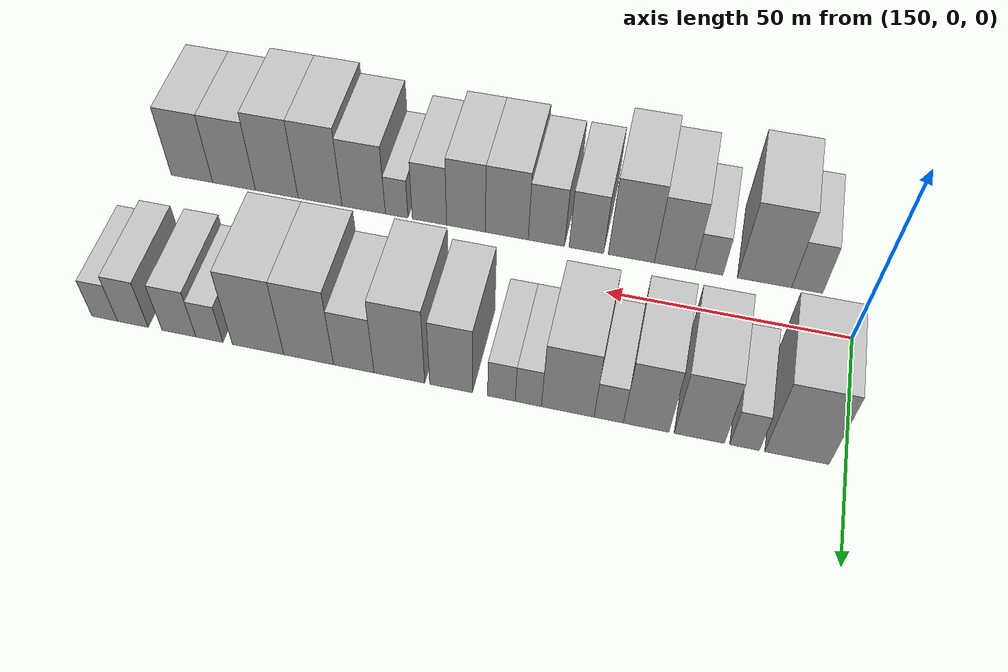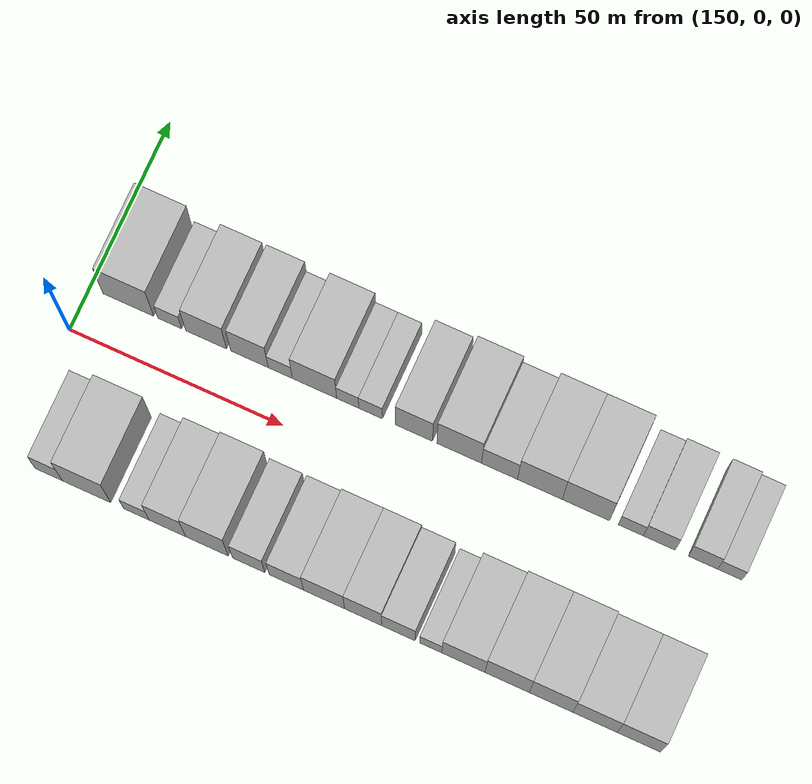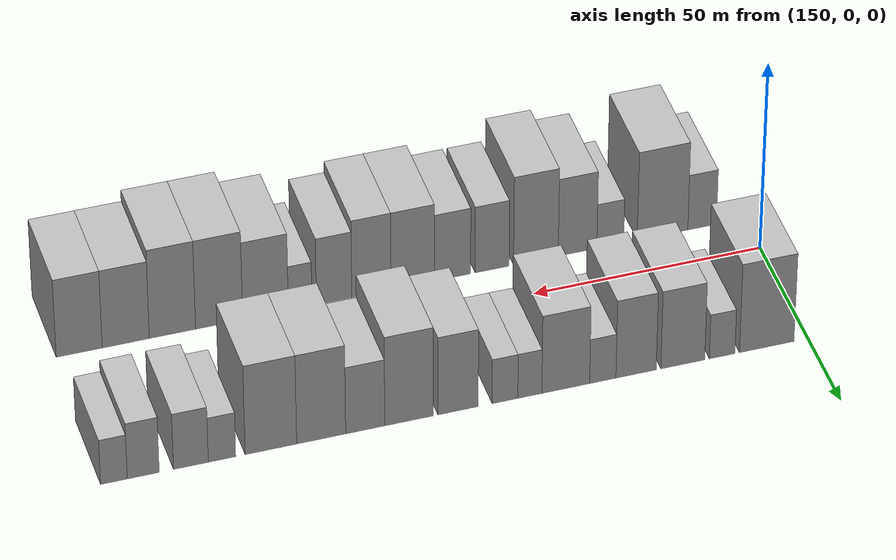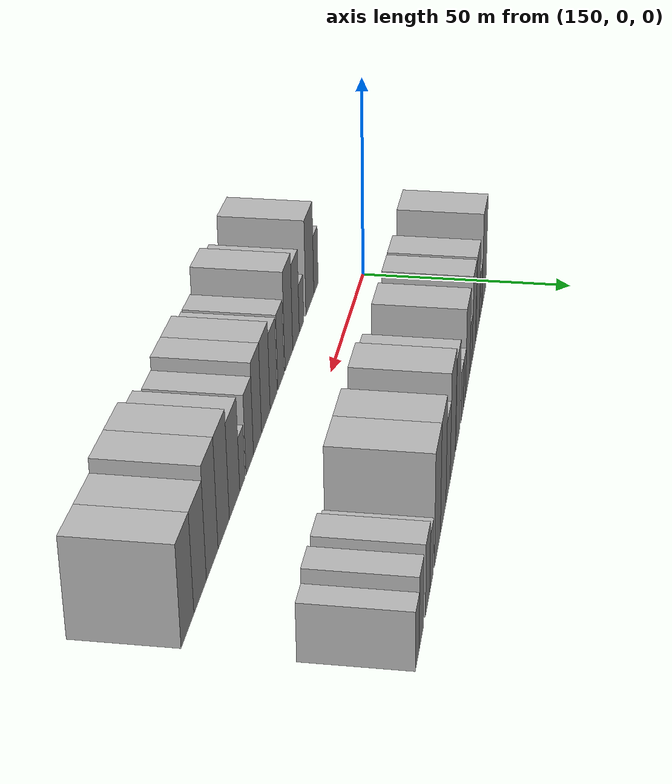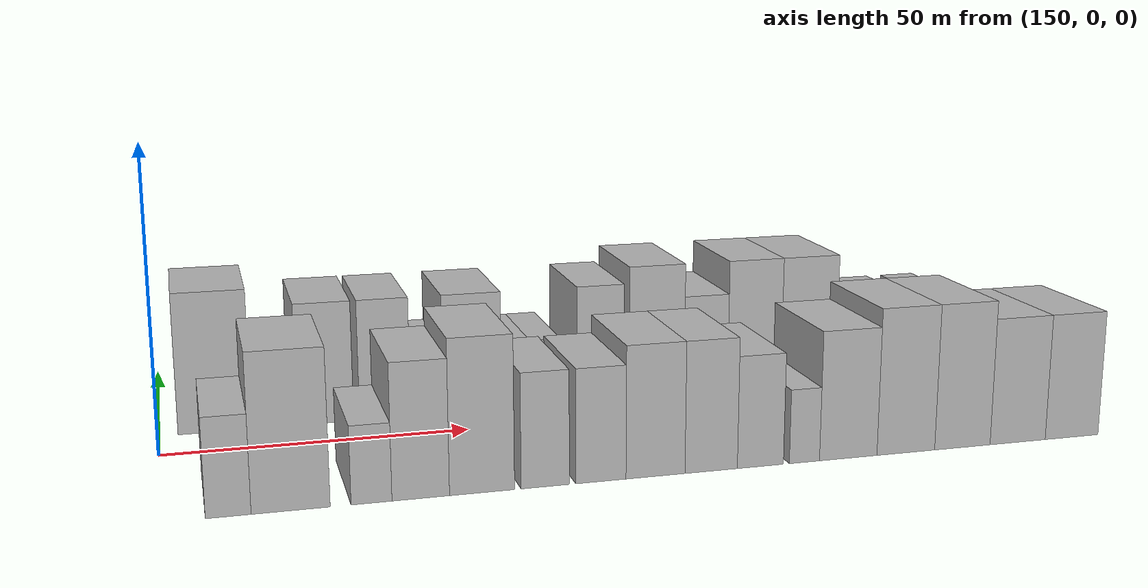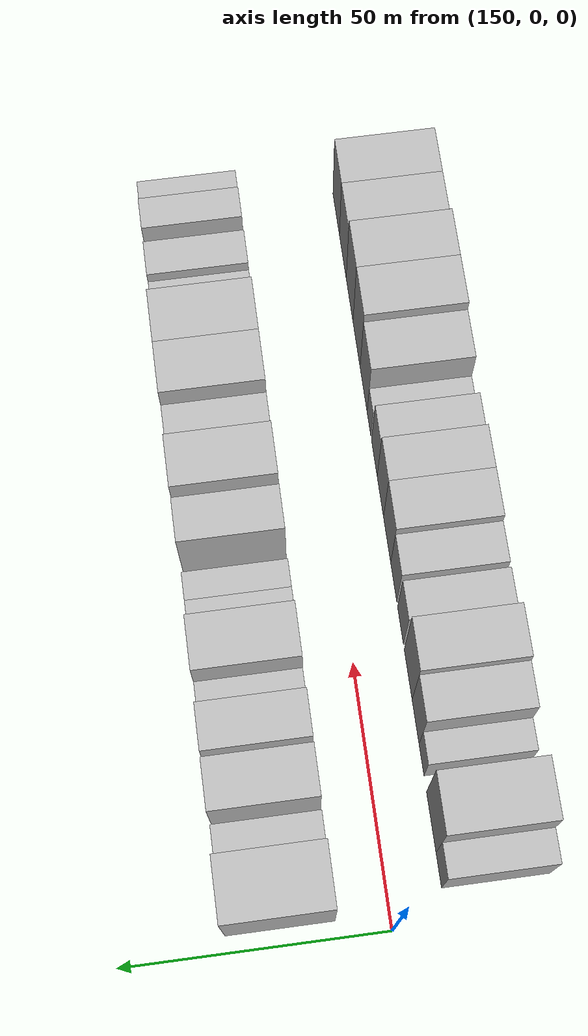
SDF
<sdf version="1.6">
 <world name="default">
  <model name="building_16">
   <static>1</static>
   <pose>159.0766 20.0000 0 0.000000 0.000000 1.570796</pose>
   <link name="link">
    <pose>0 0 12.00 0 0 0</pose>
    <collision name="collision"><geometry><box><size>20.0000 11.9148 24.0000</size></box></geometry></collision>
    <visual name="visual">
     <cast_shadows>0</cast_shadows>
     <geometry><box><size>20.0000 11.9148 24.0000</size></box></geometry>
     <material>
      <script>
       <uri>model://HANNAS_wall/materials/scripts</uri>
       <uri>model://HANNAS_wall/materials/textures</uri>
       <name>vrc/HANNAS_wall</name>
      </script>
     </material>
    </visual>
   </link>
  </model>
  <model name="building_17">
   <static>1</static>
   <pose>168.8202 20.0000 0 0.000000 0.000000 1.570796</pose>
   <link name="link">
    <pose>0 0 6.00 0 0 0</pose>
    <collision name="collision"><geometry><box><size>20.0000 5.5725 12.0000</size></box></geometry></collision>
    <visual name="visual">
     <cast_shadows>0</cast_shadows>
     <geometry><box><size>20.0000 5.5725 12.0000</size></box></geometry>
     <material>
      <script>
       <uri>model://HANNAS_wall/materials/scripts</uri>
       <uri>model://HANNAS_wall/materials/textures</uri>
       <name>vrc/HANNAS_wall</name>
      </script>
     </material>
    </visual>
   </link>
  </model>
  <model name="building_18">
   <static>1</static>
   <pose>177.3707 20.0000 0 0.000000 0.000000 1.570796</pose>
   <link name="link">
    <pose>0 0 10.50 0 0 0</pose>
    <collision name="collision"><geometry><box><size>20.0000 9.5284 21.0000</size></box></geometry></collision>
    <visual name="visual">
     <cast_shadows>0</cast_shadows>
     <geometry><box><size>20.0000 9.5284 21.0000</size></box></geometry>
     <material>
      <script>
       <uri>model://HANNAS_wall/materials/scripts</uri>
       <uri>model://HANNAS_wall/materials/textures</uri>
       <name>vrc/HANNAS_wall</name>
      </script>
     </material>
    </visual>
   </link>
  </model>
  <model name="building_19">
   <static>1</static>
   <pose>187.5096 20.0000 0 0.000000 0.000000 1.570796</pose>
   <link name="link">
    <pose>0 0 10.50 0 0 0</pose>
    <collision name="collision"><geometry><box><size>20.0000 8.7494 21.0000</size></box></geometry></collision>
    <visual name="visual">
     <cast_shadows>0</cast_shadows>
     <geometry><box><size>20.0000 8.7494 21.0000</size></box></geometry>
     <material>
      <script>
       <uri>model://HANNAS_wall/materials/scripts</uri>
       <uri>model://HANNAS_wall/materials/textures</uri>
       <name>vrc/HANNAS_wall</name>
      </script>
     </material>
    </visual>
   </link>
  </model>
  <model name="building_20">
   <static>1</static>
   <pose>194.7217 20.0000 0 0.000000 0.000000 1.570796</pose>
   <link name="link">
    <pose>0 0 6.00 0 0 0</pose>
    <collision name="collision"><geometry><box><size>20.0000 5.6749 12.0000</size></box></geometry></collision>
    <visual name="visual">
     <cast_shadows>0</cast_shadows>
     <geometry><box><size>20.0000 5.6749 12.0000</size></box></geometry>
     <material>
      <script>
       <uri>model://HANNAS_wall/materials/scripts</uri>
       <uri>model://HANNAS_wall/materials/textures</uri>
       <name>vrc/HANNAS_wall</name>
      </script>
     </material>
    </visual>
   </link>
  </model>
  <model name="building_21">
   <static>1</static>
   <pose>202.7160 20.0000 0 0.000000 0.000000 1.570796</pose>
   <link name="link">
    <pose>0 0 10.50 0 0 0</pose>
    <collision name="collision"><geometry><box><size>20.0000 10.3136 21.0000</size></box></geometry></collision>
    <visual name="visual">
     <cast_shadows>0</cast_shadows>
     <geometry><box><size>20.0000 10.3136 21.0000</size></box></geometry>
     <material>
      <script>
       <uri>model://HANNAS_wall/materials/scripts</uri>
       <uri>model://HANNAS_wall/materials/textures</uri>
       <name>vrc/HANNAS_wall</name>
      </script>
     </material>
    </visual>
   </link>
  </model>
  <model name="building_22">
   <static>1</static>
   <pose>210.4509 20.0000 0 0.000000 0.000000 1.570796</pose>
   <link name="link">
    <pose>0 0 6.00 0 0 0</pose>
    <collision name="collision"><geometry><box><size>20.0000 5.1561 12.0000</size></box></geometry></collision>
    <visual name="visual">
     <cast_shadows>0</cast_shadows>
     <geometry><box><size>20.0000 5.1561 12.0000</size></box></geometry>
     <material>
      <script>
       <uri>model://HANNAS_wall/materials/scripts</uri>
       <uri>model://HANNAS_wall/materials/textures</uri>
       <name>vrc/HANNAS_wall</name>
      </script>
     </material>
    </visual>
   </link>
  </model>
  <model name="building_23">
   <static>1</static>
   <pose>215.7773 20.0000 0 0.000000 0.000000 1.570796</pose>
   <link name="link">
    <pose>0 0 6.00 0 0 0</pose>
    <collision name="collision"><geometry><box><size>20.0000 5.4966 12.0000</size></box></geometry></collision>
    <visual name="visual">
     <cast_shadows>0</cast_shadows>
     <geometry><box><size>20.0000 5.4966 12.0000</size></box></geometry>
     <material>
      <script>
       <uri>model://HANNAS_wall/materials/scripts</uri>
       <uri>model://HANNAS_wall/materials/textures</uri>
       <name>vrc/HANNAS_wall</name>
      </script>
     </material>
    </visual>
   </link>
  </model>
  <model name="building_24">
   <static>1</static>
   <pose>225.8295 20.0000 0 0.000000 0.000000 1.570796</pose>
   <link name="link">
    <pose>0 0 10.50 0 0 0</pose>
    <collision name="collision"><geometry><box><size>20.0000 8.6078 21.0000</size></box></geometry></collision>
    <visual name="visual">
     <cast_shadows>0</cast_shadows>
     <geometry><box><size>20.0000 8.6078 21.0000</size></box></geometry>
     <material>
      <script>
       <uri>model://HANNAS_wall/materials/scripts</uri>
       <uri>model://HANNAS_wall/materials/textures</uri>
       <name>vrc/HANNAS_wall</name>
      </script>
     </material>
    </visual>
   </link>
  </model>
  <model name="building_25">
   <static>1</static>
   <pose>236.2986 20.0000 0 0.000000 0.000000 1.570796</pose>
   <link name="link">
    <pose>0 0 12.00 0 0 0</pose>
    <collision name="collision"><geometry><box><size>20.0000 10.3304 24.0000</size></box></geometry></collision>
    <visual name="visual">
     <cast_shadows>0</cast_shadows>
     <geometry><box><size>20.0000 10.3304 24.0000</size></box></geometry>
     <material>
      <script>
       <uri>model://HANNAS_wall/materials/scripts</uri>
       <uri>model://HANNAS_wall/materials/textures</uri>
       <name>vrc/HANNAS_wall</name>
      </script>
     </material>
    </visual>
   </link>
  </model>
  <model name="building_26">
   <static>1</static>
   <pose>245.6230 20.0000 0 0.000000 0.000000 1.570796</pose>
   <link name="link">
    <pose>0 0 9.00 0 0 0</pose>
    <collision name="collision"><geometry><box><size>20.0000 8.3184 18.0000</size></box></geometry></collision>
    <visual name="visual">
     <cast_shadows>0</cast_shadows>
     <geometry><box><size>20.0000 8.3184 18.0000</size></box></geometry>
     <material>
      <script>
       <uri>model://HANNAS_wall/materials/scripts</uri>
       <uri>model://HANNAS_wall/materials/textures</uri>
       <name>vrc/HANNAS_wall</name>
      </script>
     </material>
    </visual>
   </link>
  </model>
  <model name="building_27">
   <static>1</static>
   <pose>254.9688 20.0000 0 0.000000 0.000000 1.570796</pose>
   <link name="link">
    <pose>0 0 12.00 0 0 0</pose>
    <collision name="collision"><geometry><box><size>20.0000 10.3732 24.0000</size></box></geometry></collision>
    <visual name="visual">
     <cast_shadows>0</cast_shadows>
     <geometry><box><size>20.0000 10.3732 24.0000</size></box></geometry>
     <material>
      <script>
       <uri>model://HANNAS_wall/materials/scripts</uri>
       <uri>model://HANNAS_wall/materials/textures</uri>
       <name>vrc/HANNAS_wall</name>
      </script>
     </material>
    </visual>
   </link>
  </model>
  <model name="building_28">
   <static>1</static>
   <pose>265.5905 20.0000 0 0.000000 0.000000 1.570796</pose>
   <link name="link">
    <pose>0 0 12.00 0 0 0</pose>
    <collision name="collision"><geometry><box><size>20.0000 10.8702 24.0000</size></box></geometry></collision>
    <visual name="visual">
     <cast_shadows>0</cast_shadows>
     <geometry><box><size>20.0000 10.8702 24.0000</size></box></geometry>
     <material>
      <script>
       <uri>model://HANNAS_wall/materials/scripts</uri>
       <uri>model://HANNAS_wall/materials/textures</uri>
       <name>vrc/HANNAS_wall</name>
      </script>
     </material>
    </visual>
   </link>
  </model>
  <model name="building_29">
   <static>1</static>
   <pose>275.9027 20.0000 0 0.000000 0.000000 1.570796</pose>
   <link name="link">
    <pose>0 0 6.00 0 0 0</pose>
    <collision name="collision"><geometry><box><size>20.0000 5.7542 12.0000</size></box></geometry></collision>
    <visual name="visual">
     <cast_shadows>0</cast_shadows>
     <geometry><box><size>20.0000 5.7542 12.0000</size></box></geometry>
     <material>
      <script>
       <uri>model://HANNAS_wall/materials/scripts</uri>
       <uri>model://HANNAS_wall/materials/textures</uri>
       <name>vrc/HANNAS_wall</name>
      </script>
     </material>
    </visual>
   </link>
  </model>
  <model name="building_30">
   <static>1</static>
   <pose>282.4254 20.0000 0 0.000000 0.000000 1.570796</pose>
   <link name="link">
    <pose>0 0 7.50 0 0 0</pose>
    <collision name="collision"><geometry><box><size>20.0000 7.2912 15.0000</size></box></geometry></collision>
    <visual name="visual">
     <cast_shadows>0</cast_shadows>
     <geometry><box><size>20.0000 7.2912 15.0000</size></box></geometry>
     <material>
      <script>
       <uri>model://HANNAS_wall/materials/scripts</uri>
       <uri>model://HANNAS_wall/materials/textures</uri>
       <name>vrc/HANNAS_wall</name>
      </script>
     </material>
    </visual>
   </link>
  </model>
  <model name="building_31">
   <static>1</static>
   <pose>292.4112 20.0000 0 0.000000 0.000000 1.570796</pose>
   <link name="link">
    <pose>0 0 7.50 0 0 0</pose>
    <collision name="collision"><geometry><box><size>20.0000 6.6804 15.0000</size></box></geometry></collision>
    <visual name="visual">
     <cast_shadows>0</cast_shadows>
     <geometry><box><size>20.0000 6.6804 15.0000</size></box></geometry>
     <material>
      <script>
       <uri>model://HANNAS_wall/materials/scripts</uri>
       <uri>model://HANNAS_wall/materials/textures</uri>
       <name>vrc/HANNAS_wall</name>
      </script>
     </material>
    </visual>
   </link>
  </model>
  <model name="building_32">
   <static>1</static>
   <pose>298.5404 20.0000 0 0.000000 0.000000 1.570796</pose>
   <link name="link">
    <pose>0 0 6.00 0 0 0</pose>
    <collision name="collision"><geometry><box><size>20.0000 5.5781 12.0000</size></box></geometry></collision>
    <visual name="visual">
     <cast_shadows>0</cast_shadows>
     <geometry><box><size>20.0000 5.5781 12.0000</size></box></geometry>
     <material>
      <script>
       <uri>model://HANNAS_wall/materials/scripts</uri>
       <uri>model://HANNAS_wall/materials/textures</uri>
       <name>vrc/HANNAS_wall</name>
      </script>
     </material>
    </visual>
   </link>
  </model>
  <model name="building_48">
   <static>1</static>
   <pose>159.5308 -20.0000 0 0.000000 0.000000 1.570796</pose>
   <link name="link">
    <pose>0 0 7.50 0 0 0</pose>
    <collision name="collision"><geometry><box><size>20.0000 6.3787 15.0000</size></box></geometry></collision>
    <visual name="visual">
     <cast_shadows>0</cast_shadows>
     <geometry><box><size>20.0000 6.3787 15.0000</size></box></geometry>
     <material>
      <script>
       <uri>model://HANNAS_wall/materials/scripts</uri>
       <uri>model://HANNAS_wall/materials/textures</uri>
       <name>vrc/HANNAS_wall</name>
      </script>
     </material>
    </visual>
   </link>
  </model>
  <model name="building_49">
   <static>1</static>
   <pose>168.3353 -20.0000 0 0.000000 0.000000 1.570796</pose>
   <link name="link">
    <pose>0 0 12.00 0 0 0</pose>
    <collision name="collision"><geometry><box><size>20.0000 11.2303 24.0000</size></box></geometry></collision>
    <visual name="visual">
     <cast_shadows>0</cast_shadows>
     <geometry><box><size>20.0000 11.2303 24.0000</size></box></geometry>
     <material>
      <script>
       <uri>model://HANNAS_wall/materials/scripts</uri>
       <uri>model://HANNAS_wall/materials/textures</uri>
       <name>vrc/HANNAS_wall</name>
      </script>
     </material>
    </visual>
   </link>
  </model>
  <model name="building_50">
   <static>1</static>
   <pose>179.9313 -20.0000 0 0.000000 0.000000 1.570796</pose>
   <link name="link">
    <pose>0 0 6.00 0 0 0</pose>
    <collision name="collision"><geometry><box><size>20.0000 5.9615 12.0000</size></box></geometry></collision>
    <visual name="visual">
     <cast_shadows>0</cast_shadows>
     <geometry><box><size>20.0000 5.9615 12.0000</size></box></geometry>
     <material>
      <script>
       <uri>model://HANNAS_wall/materials/scripts</uri>
       <uri>model://HANNAS_wall/materials/textures</uri>
       <name>vrc/HANNAS_wall</name>
      </script>
     </material>
    </visual>
   </link>
  </model>
  <model name="building_51">
   <static>1</static>
   <pose>187.1720 -20.0000 0 0.000000 0.000000 1.570796</pose>
   <link name="link">
    <pose>0 0 10.50 0 0 0</pose>
    <collision name="collision"><geometry><box><size>20.0000 8.5201 21.0000</size></box></geometry></collision>
    <visual name="visual">
     <cast_shadows>0</cast_shadows>
     <geometry><box><size>20.0000 8.5201 21.0000</size></box></geometry>
     <material>
      <script>
       <uri>model://HANNAS_wall/materials/scripts</uri>
       <uri>model://HANNAS_wall/materials/textures</uri>
       <name>vrc/HANNAS_wall</name>
      </script>
     </material>
    </visual>
   </link>
  </model>
  <model name="building_52">
   <static>1</static>
   <pose>196.3513 -20.0000 0 0.000000 0.000000 1.570796</pose>
   <link name="link">
    <pose>0 0 12.00 0 0 0</pose>
    <collision name="collision"><geometry><box><size>20.0000 9.8385 24.0000</size></box></geometry></collision>
    <visual name="visual">
     <cast_shadows>0</cast_shadows>
     <geometry><box><size>20.0000 9.8385 24.0000</size></box></geometry>
     <material>
      <script>
       <uri>model://HANNAS_wall/materials/scripts</uri>
       <uri>model://HANNAS_wall/materials/textures</uri>
       <name>vrc/HANNAS_wall</name>
      </script>
     </material>
    </visual>
   </link>
  </model>
  <model name="building_53">
   <static>1</static>
   <pose>205.9977 -20.0000 0 0.000000 0.000000 1.570796</pose>
   <link name="link">
    <pose>0 0 9.00 0 0 0</pose>
    <collision name="collision"><geometry><box><size>20.0000 7.4543 18.0000</size></box></geometry></collision>
    <visual name="visual">
     <cast_shadows>0</cast_shadows>
     <geometry><box><size>20.0000 7.4543 18.0000</size></box></geometry>
     <material>
      <script>
       <uri>model://HANNAS_wall/materials/scripts</uri>
       <uri>model://HANNAS_wall/materials/textures</uri>
       <name>vrc/HANNAS_wall</name>
      </script>
     </material>
    </visual>
   </link>
  </model>
  <model name="building_54">
   <static>1</static>
   <pose>214.6763 -20.0000 0 0.000000 0.000000 1.570796</pose>
   <link name="link">
    <pose>0 0 9.00 0 0 0</pose>
    <collision name="collision"><geometry><box><size>20.0000 7.9028 18.0000</size></box></geometry></collision>
    <visual name="visual">
     <cast_shadows>0</cast_shadows>
     <geometry><box><size>20.0000 7.9028 18.0000</size></box></geometry>
     <material>
      <script>
       <uri>model://HANNAS_wall/materials/scripts</uri>
       <uri>model://HANNAS_wall/materials/textures</uri>
       <name>vrc/HANNAS_wall</name>
      </script>
     </material>
    </visual>
   </link>
  </model>
  <model name="building_55">
   <static>1</static>
   <pose>223.3605 -20.0000 0 0.000000 0.000000 1.570796</pose>
   <link name="link">
    <pose>0 0 10.50 0 0 0</pose>
    <collision name="collision"><geometry><box><size>20.0000 9.4656 21.0000</size></box></geometry></collision>
    <visual name="visual">
     <cast_shadows>0</cast_shadows>
     <geometry><box><size>20.0000 9.4656 21.0000</size></box></geometry>
     <material>
      <script>
       <uri>model://HANNAS_wall/materials/scripts</uri>
       <uri>model://HANNAS_wall/materials/textures</uri>
       <name>vrc/HANNAS_wall</name>
      </script>
     </material>
    </visual>
   </link>
  </model>
  <model name="building_56">
   <static>1</static>
   <pose>232.3767 -20.0000 0 0.000000 0.000000 1.570796</pose>
   <link name="link">
    <pose>0 0 10.50 0 0 0</pose>
    <collision name="collision"><geometry><box><size>20.0000 8.5668 21.0000</size></box></geometry></collision>
    <visual name="visual">
     <cast_shadows>0</cast_shadows>
     <geometry><box><size>20.0000 8.5668 21.0000</size></box></geometry>
     <material>
      <script>
       <uri>model://HANNAS_wall/materials/scripts</uri>
       <uri>model://HANNAS_wall/materials/textures</uri>
       <name>vrc/HANNAS_wall</name>
      </script>
     </material>
    </visual>
   </link>
  </model>
  <model name="building_57">
   <static>1</static>
   <pose>240.4911 -20.0000 0 0.000000 0.000000 1.570796</pose>
   <link name="link">
    <pose>0 0 9.00 0 0 0</pose>
    <collision name="collision"><geometry><box><size>20.0000 7.6621 18.0000</size></box></geometry></collision>
    <visual name="visual">
     <cast_shadows>0</cast_shadows>
     <geometry><box><size>20.0000 7.6621 18.0000</size></box></geometry>
     <material>
      <script>
       <uri>model://HANNAS_wall/materials/scripts</uri>
       <uri>model://HANNAS_wall/materials/textures</uri>
       <name>vrc/HANNAS_wall</name>
      </script>
     </material>
    </visual>
   </link>
  </model>
  <model name="building_58">
   <static>1</static>
   <pose>247.8712 -20.0000 0 0.000000 0.000000 1.570796</pose>
   <link name="link">
    <pose>0 0 6.00 0 0 0</pose>
    <collision name="collision"><geometry><box><size>20.0000 5.0982 12.0000</size></box></geometry></collision>
    <visual name="visual">
     <cast_shadows>0</cast_shadows>
     <geometry><box><size>20.0000 5.0982 12.0000</size></box></geometry>
     <material>
      <script>
       <uri>model://HANNAS_wall/materials/scripts</uri>
       <uri>model://HANNAS_wall/materials/textures</uri>
       <name>vrc/HANNAS_wall</name>
      </script>
     </material>
    </visual>
   </link>
  </model>
  <model name="building_59">
   <static>1</static>
   <pose>255.3561 -20.0000 0 0.000000 0.000000 1.570796</pose>
   <link name="link">
    <pose>0 0 10.50 0 0 0</pose>
    <collision name="collision"><geometry><box><size>20.0000 9.8717 21.0000</size></box></geometry></collision>
    <visual name="visual">
     <cast_shadows>0</cast_shadows>
     <geometry><box><size>20.0000 9.8717 21.0000</size></box></geometry>
     <material>
      <script>
       <uri>model://HANNAS_wall/materials/scripts</uri>
       <uri>model://HANNAS_wall/materials/textures</uri>
       <name>vrc/HANNAS_wall</name>
      </script>
     </material>
    </visual>
   </link>
  </model>
  <model name="building_60">
   <static>1</static>
   <pose>265.3537 -20.0000 0 0.000000 0.000000 1.570796</pose>
   <link name="link">
    <pose>0 0 12.00 0 0 0</pose>
    <collision name="collision"><geometry><box><size>20.0000 10.1234 24.0000</size></box></geometry></collision>
    <visual name="visual">
     <cast_shadows>0</cast_shadows>
     <geometry><box><size>20.0000 10.1234 24.0000</size></box></geometry>
     <material>
      <script>
       <uri>model://HANNAS_wall/materials/scripts</uri>
       <uri>model://HANNAS_wall/materials/textures</uri>
       <name>vrc/HANNAS_wall</name>
      </script>
     </material>
    </visual>
   </link>
  </model>
  <model name="building_61">
   <static>1</static>
   <pose>275.3757 -20.0000 0 0.000000 0.000000 1.570796</pose>
   <link name="link">
    <pose>0 0 12.00 0 0 0</pose>
    <collision name="collision"><geometry><box><size>20.0000 9.9205 24.0000</size></box></geometry></collision>
    <visual name="visual">
     <cast_shadows>0</cast_shadows>
     <geometry><box><size>20.0000 9.9205 24.0000</size></box></geometry>
     <material>
      <script>
       <uri>model://HANNAS_wall/materials/scripts</uri>
       <uri>model://HANNAS_wall/materials/textures</uri>
       <name>vrc/HANNAS_wall</name>
      </script>
     </material>
    </visual>
   </link>
  </model>
  <model name="building_62">
   <static>1</static>
   <pose>285.3744 -20.0000 0 0.000000 0.000000 1.570796</pose>
   <link name="link">
    <pose>0 0 10.50 0 0 0</pose>
    <collision name="collision"><geometry><box><size>20.0000 10.0769 21.0000</size></box></geometry></collision>
    <visual name="visual">
     <cast_shadows>0</cast_shadows>
     <geometry><box><size>20.0000 10.0769 21.0000</size></box></geometry>
     <material>
      <script>
       <uri>model://HANNAS_wall/materials/scripts</uri>
       <uri>model://HANNAS_wall/materials/textures</uri>
       <name>vrc/HANNAS_wall</name>
      </script>
     </material>
    </visual>
   </link>
  </model>
  <model name="building_63">
   <static>1</static>
   <pose>295.3232 -20.0000 0 0.000000 0.000000 1.570796</pose>
   <link name="link">
    <pose>0 0 10.50 0 0 0</pose>
    <collision name="collision"><geometry><box><size>20.0000 9.8207 21.0000</size></box></geometry></collision>
    <visual name="visual">
     <cast_shadows>0</cast_shadows>
     <geometry><box><size>20.0000 9.8207 21.0000</size></box></geometry>
     <material>
      <script>
       <uri>model://HANNAS_wall/materials/scripts</uri>
       <uri>model://HANNAS_wall/materials/textures</uri>
       <name>vrc/HANNAS_wall</name>
      </script>
     </material>
    </visual>
   </link>
  </model>
 </world>
</sdf>
